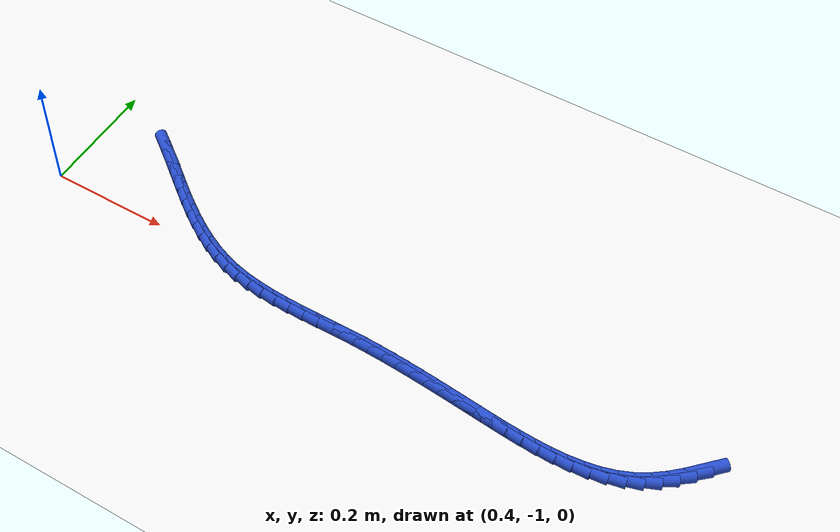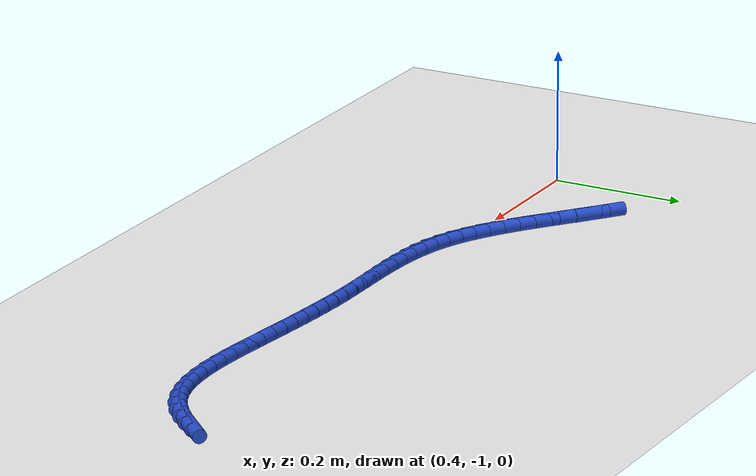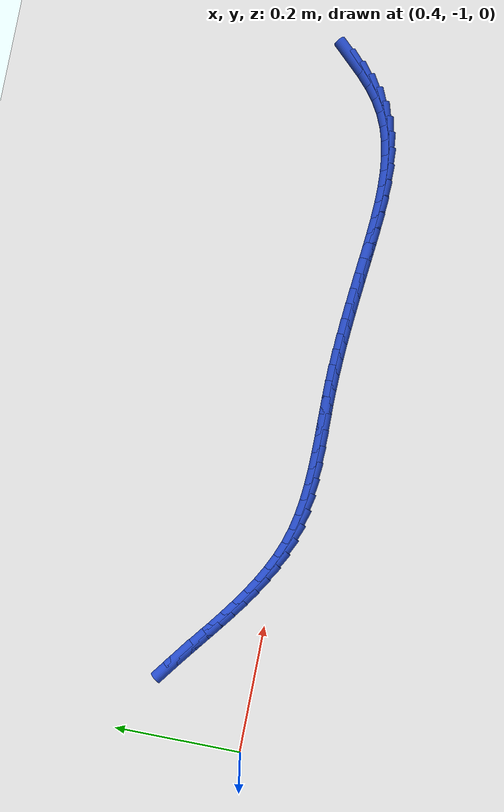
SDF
<sdf version="1.6">
 <world name="default">
  <model name="ground_plane">
   <static>1</static>
   <link name="link">
    <collision name="collision">
     <geometry><plane><normal>0 0 1</normal><size>100 100</size></plane></geometry>
     <surface><friction><ode><mu>100</mu><mu2>50</mu2></ode></friction></surface>
    </collision>
    <visual name="visual">
     <cast_shadows>0</cast_shadows>
     <geometry><plane><normal>0 0 1</normal><size>100 100</size></plane></geometry>
     <material>
      <script><uri>file://media/materials/scripts/gazebo.material</uri><name>Gazebo/WhiteGlow</name></script>
     </material>
    </visual>
   </link>
  </model>
  <model name="line">
   <link name="link_176">
    <pose>1.517656668804825 -0.9675712670950876 0.01 0 1.57 0.8119830561385323</pose>
    <collision name="collision">
     <geometry><cylinder><radius>0.01</radius><length>0.08</length></cylinder></geometry>
    </collision>
    <visual name="visual">
     <material>
      <script><name>Gazebo/Blue</name><uri>file://media/materials/scripts/gazebo.material</uri></script>
     </material>
     <geometry><cylinder><radius>0.01</radius><length>0.08</length></cylinder></geometry>
    </visual>
   </link>
   <link name="link_177">
    <pose>1.5002995140456317 -0.9858767321968507 0.01 0 1.57 0.741422077099226</pose>
    <collision name="collision">
     <geometry><cylinder><radius>0.01</radius><length>0.08</length></cylinder></geometry>
    </collision>
    <visual name="visual">
     <material>
      <script><name>Gazebo/Blue</name><uri>file://media/materials/scripts/gazebo.material</uri></script>
     </material>
     <geometry><cylinder><radius>0.01</radius><length>0.08</length></cylinder></geometry>
    </visual>
   </link>
   <link name="link_178">
    <pose>1.4821152985514718 -1.0025280298626504 0.01 0 1.57 0.6497281079217848</pose>
    <collision name="collision">
     <geometry><cylinder><radius>0.01</radius><length>0.08</length></cylinder></geometry>
    </collision>
    <visual name="visual">
     <material>
      <script><name>Gazebo/Blue</name><uri>file://media/materials/scripts/gazebo.material</uri></script>
     </material>
     <geometry><cylinder><radius>0.01</radius><length>0.08</length></cylinder></geometry>
    </visual>
   </link>
   <link name="link_179">
    <pose>1.46288389750354 -1.017139576562475 0.01 0 1.57 0.5363557734301001</pose>
    <collision name="collision">
     <geometry><cylinder><radius>0.01</radius><length>0.08</length></cylinder></geometry>
    </collision>
    <visual name="visual">
     <material>
      <script><name>Gazebo/Blue</name><uri>file://media/materials/scripts/gazebo.material</uri></script>
     </material>
     <geometry><cylinder><radius>0.01</radius><length>0.08</length></cylinder></geometry>
    </visual>
   </link>
   <link name="link_180">
    <pose>1.4423851860830301 -1.029325788766312 0.01 0 1.57 0.4072239439436369</pose>
    <collision name="collision">
     <geometry><cylinder><radius>0.01</radius><length>0.08</length></cylinder></geometry>
    </collision>
    <visual name="visual">
     <material>
      <script><name>Gazebo/Blue</name><uri>file://media/materials/scripts/gazebo.material</uri></script>
     </material>
     <geometry><cylinder><radius>0.01</radius><length>0.08</length></cylinder></geometry>
    </visual>
   </link>
   <link name="link_181">
    <pose>1.4204519095087647 -1.038786372226463 0.01 0 1.57 0.28805630808436217</pose>
    <collision name="collision">
     <geometry><cylinder><radius>0.01</radius><length>0.08</length></cylinder></geometry>
    </collision>
    <visual name="visual">
     <material>
      <script><name>Gazebo/Blue</name><uri>file://media/materials/scripts/gazebo.material</uri></script>
     </material>
     <geometry><cylinder><radius>0.01</radius><length>0.08</length></cylinder></geometry>
    </visual>
   </link>
   <link name="link_182">
    <pose>1.397198943305321 -1.0456761617697654 0.01 0 1.57 0.1875979431389039</pose>
    <collision name="collision">
     <geometry><cylinder><radius>0.01</radius><length>0.08</length></cylinder></geometry>
    </collision>
    <visual name="visual">
     <material>
      <script><name>Gazebo/Blue</name><uri>file://media/materials/scripts/gazebo.material</uri></script>
     </material>
     <geometry><cylinder><radius>0.01</radius><length>0.08</length></cylinder></geometry>
    </visual>
   </link>
   <link name="link_183">
    <pose>1.3728348903007646 -1.0503011919347747 0.01 0 1.57 0.10514221585568376</pose>
    <collision name="collision">
     <geometry><cylinder><radius>0.01</radius><length>0.08</length></cylinder></geometry>
    </collision>
    <visual name="visual">
     <material>
      <script><name>Gazebo/Blue</name><uri>file://media/materials/scripts/gazebo.material</uri></script>
     </material>
     <geometry><cylinder><radius>0.01</radius><length>0.08</length></cylinder></geometry>
    </visual>
   </link>
   <link name="link_184">
    <pose>1.34756841571683 -1.0529675979127286 0.01 0 1.57 0.03903670610946099</pose>
    <collision name="collision">
     <geometry><cylinder><radius>0.01</radius><length>0.08</length></cylinder></geometry>
    </collision>
    <visual name="visual">
     <material>
      <script><name>Gazebo/Blue</name><uri>file://media/materials/scripts/gazebo.material</uri></script>
     </material>
     <geometry><cylinder><radius>0.01</radius><length>0.08</length></cylinder></geometry>
    </visual>
   </link>
   <link name="link_185">
    <pose>1.3216081847752508 -1.0539815148948641 0.01 0 1.57 -0.012570061057855964</pose>
    <collision name="collision">
     <geometry><cylinder><radius>0.01</radius><length>0.08</length></cylinder></geometry>
    </collision>
    <visual name="visual">
     <material>
      <script><name>Gazebo/Blue</name><uri>file://media/materials/scripts/gazebo.material</uri></script>
     </material>
     <geometry><cylinder><radius>0.01</radius><length>0.08</length></cylinder></geometry>
    </visual>
   </link>
   <link name="link_186">
    <pose>1.2951628626977607 -1.0536490780724186 0.01 0 1.57 -0.05132336376098858</pose>
    <collision name="collision">
     <geometry><cylinder><radius>0.01</radius><length>0.08</length></cylinder></geometry>
    </collision>
    <visual name="visual">
     <material>
      <script><name>Gazebo/Blue</name><uri>file://media/materials/scripts/gazebo.material</uri></script>
     </material>
     <geometry><cylinder><radius>0.01</radius><length>0.08</length></cylinder></geometry>
    </visual>
   </link>
   <link name="link_187">
    <pose>1.2684411147060932 -1.0522764226366288 0.01 0 1.57 -0.07847893036313736</pose>
    <collision name="collision">
     <geometry><cylinder><radius>0.01</radius><length>0.08</length></cylinder></geometry>
    </collision>
    <visual name="visual">
     <material>
      <script><name>Gazebo/Blue</name><uri>file://media/materials/scripts/gazebo.material</uri></script>
     </material>
     <geometry><cylinder><radius>0.01</radius><length>0.08</length></cylinder></geometry>
    </visual>
   </link>
   <link name="link_188">
    <pose>1.2416516060219818 -1.0501696837787324 0.01 0 1.57 -0.094829905996127</pose>
    <collision name="collision">
     <geometry><cylinder><radius>0.01</radius><length>0.08</length></cylinder></geometry>
    </collision>
    <visual name="visual">
     <material>
      <script><name>Gazebo/Blue</name><uri>file://media/materials/scripts/gazebo.material</uri></script>
     </material>
     <geometry><cylinder><radius>0.01</radius><length>0.08</length></cylinder></geometry>
    </visual>
   </link>
   <link name="link_189">
    <pose>1.2150030018671618 -1.0476349966899667 0.01 0 1.57 -0.10078701573194021</pose>
    <collision name="collision">
     <geometry><cylinder><radius>0.01</radius><length>0.08</length></cylinder></geometry>
    </collision>
    <visual name="visual">
     <material>
      <script><name>Gazebo/Blue</name><uri>file://media/materials/scripts/gazebo.material</uri></script>
     </material>
     <geometry><cylinder><radius>0.01</radius><length>0.08</length></cylinder></geometry>
    </visual>
   </link>
   <link name="link_190">
    <pose>1.1886998621837743 -1.044974968756955 0.01 0 1.57 -0.09991159104037205</pose>
    <collision name="collision">
     <geometry><cylinder><radius>0.01</radius><length>0.08</length></cylinder></geometry>
    </collision>
    <visual name="visual">
     <material>
      <script><name>Gazebo/Blue</name><uri>file://media/materials/scripts/gazebo.material</uri></script>
     </material>
     <geometry><cylinder><radius>0.01</radius><length>0.08</length></cylinder></geometry>
    </visual>
   </link>
   <link name="link_191">
    <pose>1.1628164994964338 -1.0423802813865575 0.01 0 1.57 -0.09643611720707733</pose>
    <collision name="collision">
     <geometry><cylinder><radius>0.01</radius><length>0.08</length></cylinder></geometry>
    </collision>
    <visual name="visual">
     <material>
      <script><name>Gazebo/Blue</name><uri>file://media/materials/scripts/gazebo.material</uri></script>
     </material>
     <geometry><cylinder><radius>0.01</radius><length>0.08</length></cylinder></geometry>
    </visual>
   </link>
   <link name="link_192">
    <pose>1.1372732840588755 -1.0399093282226815 0.01 0 1.57 -0.09055111565893956</pose>
    <collision name="collision">
     <geometry><cylinder><radius>0.01</radius><length>0.08</length></cylinder></geometry>
    </collision>
    <visual name="visual">
     <material>
      <script><name>Gazebo/Blue</name><uri>file://media/materials/scripts/gazebo.material</uri></script>
     </material>
     <geometry><cylinder><radius>0.01</radius><length>0.08</length></cylinder></geometry>
    </visual>
   </link>
   <link name="link_193">
    <pose>1.1119817003347066 -1.037612867051381 0.01 0 1.57 -0.08223899475950183</pose>
    <collision name="collision">
     <geometry><cylinder><radius>0.01</radius><length>0.08</length></cylinder></geometry>
    </collision>
    <visual name="visual">
     <material>
      <script><name>Gazebo/Blue</name><uri>file://media/materials/scripts/gazebo.material</uri></script>
     </material>
     <geometry><cylinder><radius>0.01</radius><length>0.08</length></cylinder></geometry>
    </visual>
   </link>
   <link name="link_194">
    <pose>1.0868532327875335 -1.03554165565871 0.01 0 1.57 -0.07153150912420089</pose>
    <collision name="collision">
     <geometry><cylinder><radius>0.01</radius><length>0.08</length></cylinder></geometry>
    </collision>
    <visual name="visual">
     <material>
      <script><name>Gazebo/Blue</name><uri>file://media/materials/scripts/gazebo.material</uri></script>
     </material>
     <geometry><cylinder><radius>0.01</radius><length>0.08</length></cylinder></geometry>
    </visual>
   </link>
   <link name="link_195">
    <pose>1.0617993658809652 -1.033746451830723 0.01 0 1.57 -0.0585118502421192</pose>
    <collision name="collision">
     <geometry><cylinder><radius>0.01</radius><length>0.08</length></cylinder></geometry>
    </collision>
    <visual name="visual">
     <material>
      <script><name>Gazebo/Blue</name><uri>file://media/materials/scripts/gazebo.material</uri></script>
     </material>
     <geometry><cylinder><radius>0.01</radius><length>0.08</length></cylinder></geometry>
    </visual>
   </link>
   <link name="link_196">
    <pose>1.0367315840786082 -1.0322780133534735 0.01 0 1.57 -0.04331441502532408</pose>
    <collision name="collision">
     <geometry><cylinder><radius>0.01</radius><length>0.08</length></cylinder></geometry>
    </collision>
    <visual name="visual">
     <material>
      <script><name>Gazebo/Blue</name><uri>file://media/materials/scripts/gazebo.material</uri></script>
     </material>
     <geometry><cylinder><radius>0.01</radius><length>0.08</length></cylinder></geometry>
    </visual>
   </link>
   <link name="link_197">
    <pose>1.01156137184407 -1.0311870980130167 0.01 0 1.57 -0.026121981003637416</pose>
    <collision name="collision">
     <geometry><cylinder><radius>0.01</radius><length>0.08</length></cylinder></geometry>
    </collision>
    <visual name="visual">
     <material>
      <script><name>Gazebo/Blue</name><uri>file://media/materials/scripts/gazebo.material</uri></script>
     </material>
     <geometry><cylinder><radius>0.01</radius><length>0.08</length></cylinder></geometry>
    </visual>
   </link>
   <link name="link_198">
    <pose>0.9862002136409592 -1.0305244635954067 0.01 0 1.57 -0.0078026298669844445</pose>
    <collision name="collision">
     <geometry><cylinder><radius>0.01</radius><length>0.08</length></cylinder></geometry>
    </collision>
    <visual name="visual">
     <material>
      <script><name>Gazebo/Blue</name><uri>file://media/materials/scripts/gazebo.material</uri></script>
     </material>
     <geometry><cylinder><radius>0.01</radius><length>0.08</length></cylinder></geometry>
    </visual>
   </link>
   <link name="link_199">
    <pose>0.9605700086984286 -1.0303244765343358 0.01 0 1.57 0.004308434659578309</pose>
    <collision name="collision">
     <geometry><cylinder><radius>0.01</radius><length>0.08</length></cylinder></geometry>
    </collision>
    <visual name="visual">
     <material>
      <script><name>Gazebo/Blue</name><uri>file://media/materials/scripts/gazebo.material</uri></script>
     </material>
     <geometry><cylinder><radius>0.01</radius><length>0.08</length></cylinder></geometry>
    </visual>
   </link>
   <link name="link_200">
    <pose>0.9347105909882911 -1.0304358908352556 0.01 0 1.57 0.005933635268656351</pose>
    <collision name="collision">
     <geometry><cylinder><radius>0.01</radius><length>0.08</length></cylinder></geometry>
    </collision>
    <visual name="visual">
     <material>
      <script><name>Gazebo/Blue</name><uri>file://media/materials/scripts/gazebo.material</uri></script>
     </material>
     <geometry><cylinder><radius>0.01</radius><length>0.08</length></cylinder></geometry>
    </visual>
   </link>
   <link name="link_201">
    <pose>0.9087364178979597 -1.0305900139135726 0.01 0 1.57 -0.002838186437076254</pose>
    <collision name="collision">
     <geometry><cylinder><radius>0.01</radius><length>0.08</length></cylinder></geometry>
    </collision>
    <visual name="visual">
     <material>
      <script><name>Gazebo/Blue</name><uri>file://media/materials/scripts/gazebo.material</uri></script>
     </material>
     <geometry><cylinder><radius>0.01</radius><length>0.08</length></cylinder></geometry>
    </visual>
   </link>
   <link name="link_202">
    <pose>0.8827631264090602 -1.0305162966720043 0.01 0 1.57 -0.022122378851264925</pose>
    <collision name="collision">
     <geometry><cylinder><radius>0.01</radius><length>0.08</length></cylinder></geometry>
    </collision>
    <visual name="visual">
     <material>
      <script><name>Gazebo/Blue</name><uri>file://media/materials/scripts/gazebo.material</uri></script>
     </material>
     <geometry><cylinder><radius>0.01</radius><length>0.08</length></cylinder></geometry>
    </visual>
   </link>
   <link name="link_203">
    <pose>0.8569063535032188 -1.0299441900132662 0.01 0 1.57 -0.052286551073200016</pose>
    <collision name="collision">
     <geometry><cylinder><radius>0.01</radius><length>0.08</length></cylinder></geometry>
    </collision>
    <visual name="visual">
     <material>
      <script><name>Gazebo/Blue</name><uri>file://media/materials/scripts/gazebo.material</uri></script>
     </material>
     <geometry><cylinder><radius>0.01</radius><length>0.08</length></cylinder></geometry>
    </visual>
   </link>
   <link name="link_204">
    <pose>0.831281736162061 -1.028603144840076 0.01 0 1.57 -0.09390150507492931</pose>
    <collision name="collision">
     <geometry><cylinder><radius>0.01</radius><length>0.08</length></cylinder></geometry>
    </collision>
    <visual name="visual">
     <material>
      <script><name>Gazebo/Blue</name><uri>file://media/materials/scripts/gazebo.material</uri></script>
     </material>
     <geometry><cylinder><radius>0.01</radius><length>0.08</length></cylinder></geometry>
    </visual>
   </link>
   <link name="link_205">
    <pose>0.8060049113672146 -1.0262226120551503 0.01 0 1.57 -0.14765054981218018</pose>
    <collision name="collision">
     <geometry><cylinder><radius>0.01</radius><length>0.08</length></cylinder></geometry>
    </collision>
    <visual name="visual">
     <material>
      <script><name>Gazebo/Blue</name><uri>file://media/materials/scripts/gazebo.material</uri></script>
     </material>
     <geometry><cylinder><radius>0.01</radius><length>0.08</length></cylinder></geometry>
    </visual>
   </link>
   <link name="link_206">
    <pose>0.7811915161003053 -1.0225320425612052 0.01 0 1.57 -0.2141719103513958</pose>
    <collision name="collision">
     <geometry><cylinder><radius>0.01</radius><length>0.08</length></cylinder></geometry>
    </collision>
    <visual name="visual">
     <material>
      <script><name>Gazebo/Blue</name><uri>file://media/materials/scripts/gazebo.material</uri></script>
     </material>
     <geometry><cylinder><radius>0.01</radius><length>0.08</length></cylinder></geometry>
    </visual>
   </link>
   <link name="link_207">
    <pose>0.7569571873429587 -1.0172608872609574 0.01 0 1.57 -0.2935121237319413</pose>
    <collision name="collision">
     <geometry><cylinder><radius>0.01</radius><length>0.08</length></cylinder></geometry>
    </collision>
    <visual name="visual">
     <material>
      <script><name>Gazebo/Blue</name><uri>file://media/materials/scripts/gazebo.material</uri></script>
     </material>
     <geometry><cylinder><radius>0.01</radius><length>0.08</length></cylinder></geometry>
    </visual>
   </link>
   <link name="link_208">
    <pose>0.7334146743404338 -1.0101453582437132 0.01 0 1.57 -0.3757914946114276</pose>
    <collision name="collision">
     <geometry><cylinder><radius>0.01</radius><length>0.08</length></cylinder></geometry>
    </collision>
    <visual name="visual">
     <material>
      <script><name>Gazebo/Blue</name><uri>file://media/materials/scripts/gazebo.material</uri></script>
     </material>
     <geometry><cylinder><radius>0.01</radius><length>0.08</length></cylinder></geometry>
    </visual>
   </link>
   <link name="link_209">
    <pose>0.7105843839970839 -1.001137872860409 0.01 0 1.57 -0.4486555761842245</pose>
    <collision name="collision">
     <geometry><cylinder><radius>0.01</radius><length>0.08</length></cylinder></geometry>
    </collision>
    <visual name="visual">
     <material>
      <script><name>Gazebo/Blue</name><uri>file://media/materials/scripts/gazebo.material</uri></script>
     </material>
     <geometry><cylinder><radius>0.01</radius><length>0.08</length></cylinder></geometry>
    </visual>
   </link>
   <link name="link_210">
    <pose>0.6883771650401376 -0.9904473619325829 0.01 0 1.57 -0.5108077543951283</pose>
    <collision name="collision">
     <geometry><cylinder><radius>0.01</radius><length>0.08</length></cylinder></geometry>
    </collision>
    <visual name="visual">
     <material>
      <script><name>Gazebo/Blue</name><uri>file://media/materials/scripts/gazebo.material</uri></script>
     </material>
     <geometry><cylinder><radius>0.01</radius><length>0.08</length></cylinder></geometry>
    </visual>
   </link>
   <link name="link_211">
    <pose>0.6666975037184112 -0.9782976530376516 0.01 0 1.57 -0.5621557568923187</pose>
    <collision name="collision">
     <geometry><cylinder><radius>0.01</radius><length>0.08</length></cylinder></geometry>
    </collision>
    <visual name="visual">
     <material>
      <script><name>Gazebo/Blue</name><uri>file://media/materials/scripts/gazebo.material</uri></script>
     </material>
     <geometry><cylinder><radius>0.01</radius><length>0.08</length></cylinder></geometry>
    </visual>
   </link>
   <link name="link_212">
    <pose>0.6454498862807219 -0.9649125737530326 0.01 0 1.57 -0.6029446127245789</pose>
    <collision name="collision">
     <geometry><cylinder><radius>0.01</radius><length>0.08</length></cylinder></geometry>
    </collision>
    <visual name="visual">
     <material>
      <script><name>Gazebo/Blue</name><uri>file://media/materials/scripts/gazebo.material</uri></script>
     </material>
     <geometry><cylinder><radius>0.01</radius><length>0.08</length></cylinder></geometry>
    </visual>
   </link>
   <link name="link_213">
    <pose>0.6245387989758848 -0.9505159516561418 0.01 0 1.57 -0.6335752807647007</pose>
    <collision name="collision">
     <geometry><cylinder><radius>0.01</radius><length>0.08</length></cylinder></geometry>
    </collision>
    <visual name="visual">
     <material>
      <script><name>Gazebo/Blue</name><uri>file://media/materials/scripts/gazebo.material</uri></script>
     </material>
     <geometry><cylinder><radius>0.01</radius><length>0.08</length></cylinder></geometry>
    </visual>
   </link>
   <link name="link_214">
    <pose>0.6038687280527183 -0.9353316143243973 0.01 0 1.57 -0.654473010623612</pose>
    <collision name="collision">
     <geometry><cylinder><radius>0.01</radius><length>0.08</length></cylinder></geometry>
    </collision>
    <visual name="visual">
     <material>
      <script><name>Gazebo/Blue</name><uri>file://media/materials/scripts/gazebo.material</uri></script>
     </material>
     <geometry><cylinder><radius>0.01</radius><length>0.08</length></cylinder></geometry>
    </visual>
   </link>
   <link name="link_215">
    <pose>0.5833441597600384 -0.9195833893352156 0.01 0 1.57 -0.6660029235483153</pose>
    <collision name="collision">
     <geometry><cylinder><radius>0.01</radius><length>0.08</length></cylinder></geometry>
    </collision>
    <visual name="visual">
     <material>
      <script><name>Gazebo/Blue</name><uri>file://media/materials/scripts/gazebo.material</uri></script>
     </material>
     <geometry><cylinder><radius>0.01</radius><length>0.08</length></cylinder></geometry>
    </visual>
   </link>
   <link name="link_216">
    <pose>0.5628695803466612 -0.9034951042660134 0.01 0 1.57 -0.6684225567070227</pose>
    <collision name="collision">
     <geometry><cylinder><radius>0.01</radius><length>0.08</length></cylinder></geometry>
    </collision>
    <visual name="visual">
     <material>
      <script><name>Gazebo/Blue</name><uri>file://media/materials/scripts/gazebo.material</uri></script>
     </material>
     <geometry><cylinder><radius>0.01</radius><length>0.08</length></cylinder></geometry>
    </visual>
   </link>
   <link name="link_217">
    <pose>0.5423494760614034 -0.8872905866942078 0.01 0 1.57 -0.6618612483737332</pose>
    <collision name="collision">
     <geometry><cylinder><radius>0.01</radius><length>0.08</length></cylinder></geometry>
    </collision>
    <visual name="visual">
     <material>
      <script><name>Gazebo/Blue</name><uri>file://media/materials/scripts/gazebo.material</uri></script>
     </material>
     <geometry><cylinder><radius>0.01</radius><length>0.08</length></cylinder></geometry>
    </visual>
   </link>
   <link name="link_218">
    <pose>0.5216883331530818 -0.8711936641972159 0.01 0 1.57 -0.6463196603939811</pose>
    <collision name="collision">
     <geometry><cylinder><radius>0.01</radius><length>0.08</length></cylinder></geometry>
    </collision>
    <visual name="visual">
     <material>
      <script><name>Gazebo/Blue</name><uri>file://media/materials/scripts/gazebo.material</uri></script>
     </material>
     <geometry><cylinder><radius>0.01</radius><length>0.08</length></cylinder></geometry>
    </visual>
   </link>
  </model>
 </world>
</sdf>
